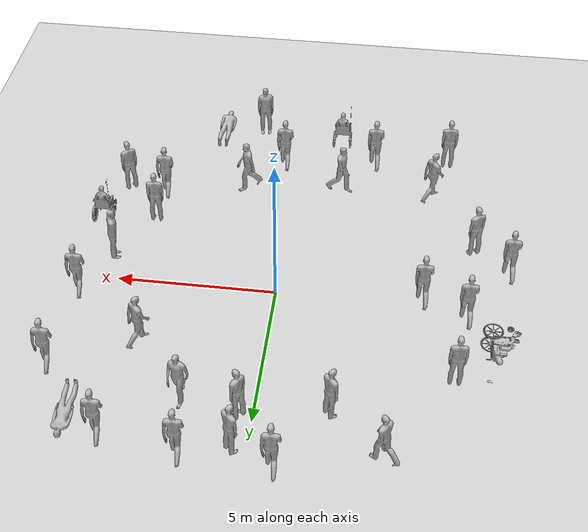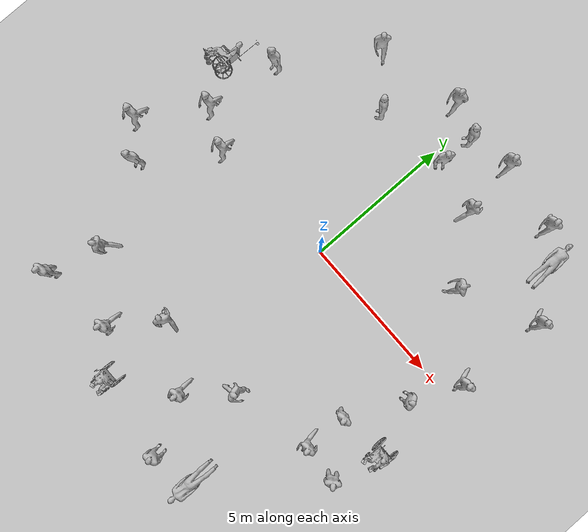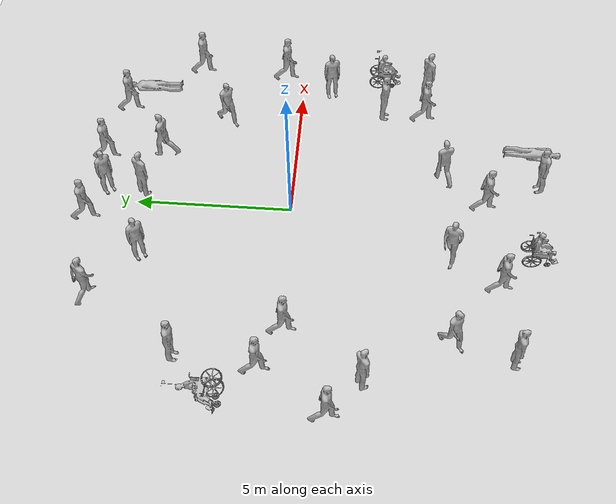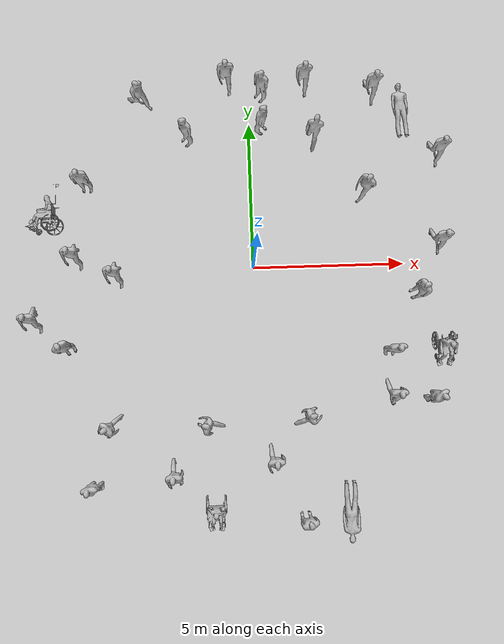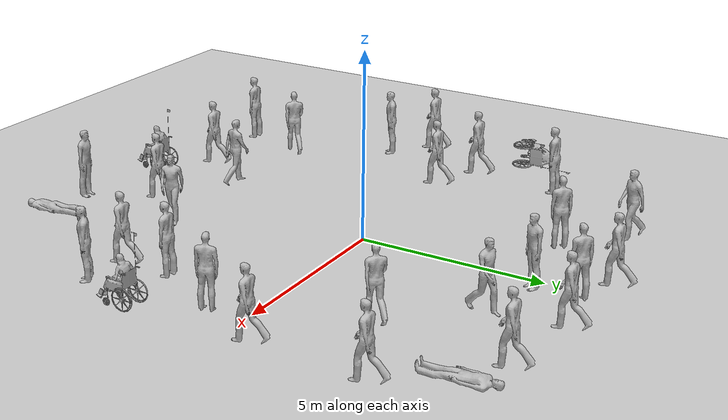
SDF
<sdf version="1.7">
 <world name="default">
  <light name="sun" type="directional">
   <pose>0 0 10 0 -0 0</pose>
   <diffuse>0.8 0.8 0.8 1</diffuse>
   <specular>0.2 0.2 0.2 1</specular>
   <attenuation>
    <range>1000</range>
    <constant>0.9</constant>
    <linear>0.01</linear>
    <quadratic>0.001</quadratic>
   </attenuation>
   <direction>-0.5 0.1 -0.9</direction>
   <spot><inner_angle>0</inner_angle><outer_angle>0</outer_angle><falloff>0</falloff></spot>
  </light>
  <model name="ground_plane">
   <static>1</static>
   <link name="link">
    <collision name="collision">
     <geometry><plane><normal>0 0 1</normal><size>100 100</size></plane></geometry>
     <surface><friction><ode><mu>100</mu><mu2>50</mu2></ode></friction></surface>
    </collision>
    <visual name="visual">
     <cast_shadows>0</cast_shadows>
     <geometry><plane><normal>0 0 1</normal><size>100 100</size></plane></geometry>
     <material>
      <script><uri>file://media/materials/scripts/gazebo.material</uri><name>Gazebo/Grey</name></script>
     </material>
    </visual>
   </link>
  </model>
  <gravity>0 0 -9.8</gravity>
  <magnetic_field>6e-06 2.3e-05 -4.2e-05</magnetic_field>
  <atmosphere type="adiabatic"/>
  <physics type="ode">
   <max_step_size>0.002</max_step_size>
   <real_time_factor>1</real_time_factor>
   <real_time_update_rate>500</real_time_update_rate>
  </physics>
  <scene><ambient>0.4 0.4 0.4 1</ambient><background>0.7 0.7 0.7 1</background><shadows>1</shadows></scene>
  <spherical_coordinates>
   <surface_model>EARTH_WGS84</surface_model>
   <latitude_deg>0</latitude_deg>
   <longitude_deg>0</longitude_deg>
   <elevation>0</elevation>
   <heading_deg>0</heading_deg>
  </spherical_coordinates>
  <model name="walking_person">
   <link name="link">
    <inertial>
     <pose>0 0 0.95 0 -0 0</pose>
     <mass>80</mass>
     <inertia><ixx>27.82</ixx><ixy>0</ixy><ixz>0</ixz><iyy>24.88</iyy><iyz>0</iyz><izz>4.57</izz></inertia>
    </inertial>
    <collision name="bottom">
     <pose>0 0 0.01 0 -0 0</pose>
     <geometry><box><size>0.35 0.75 0.02</size></box></geometry>
    </collision>
    <collision name="person">
     <pose>0 0 -0.02 0 -0 0</pose>
     <geometry><mesh><uri>model://person_walking/meshes/walking.dae</uri></mesh></geometry>
    </collision>
    <visual name="visual">
     <pose>0 0 -0.02 0 -0 0</pose>
     <geometry><mesh><uri>model://person_walking/meshes/walking.dae</uri></mesh></geometry>
    </visual>
   </link>
   <pose>-2.63143 -6.57733 -0 -0 -1e-06 0.000728</pose>
  </model>
  <model name="walking_person_0">
   <link name="link">
    <inertial>
     <pose>0 0 0.95 0 -0 0</pose>
     <mass>80</mass>
     <inertia><ixx>27.82</ixx><ixy>0</ixy><ixz>0</ixz><iyy>24.88</iyy><iyz>0</iyz><izz>4.57</izz></inertia>
    </inertial>
    <collision name="bottom">
     <pose>0 0 0.01 0 -0 0</pose>
     <geometry><box><size>0.35 0.75 0.02</size></box></geometry>
    </collision>
    <collision name="person">
     <pose>0 0 -0.02 0 -0 0</pose>
     <geometry><mesh><uri>model://person_walking/meshes/walking.dae</uri></mesh></geometry>
    </collision>
    <visual name="visual">
     <pose>0 0 -0.02 0 -0 0</pose>
     <geometry><mesh><uri>model://person_walking/meshes/walking.dae</uri></mesh></geometry>
    </visual>
   </link>
   <pose>1.8564 6.36125 1e-06 -1e-06 1e-06 -0.001087</pose>
  </model>
  <model name="person_standing">
   <link name="link">
    <inertial>
     <pose>0 -0.1 0.95 0 -0 0</pose>
     <mass>80</mass>
     <inertia><ixx>24.88</ixx><ixy>0</ixy><ixz>0</ixz><iyy>25.73</iyy><iyz>0</iyz><izz>2.48</izz></inertia>
    </inertial>
    <collision name="bottom">
     <pose>0 -0.1 0.01 0 -0 0</pose>
     <geometry><box><size>0.5 0.35 0.02</size></box></geometry>
    </collision>
    <collision name="person">
     <pose>0 0 0.02 0.04 -0 0</pose>
     <geometry><mesh><uri>model://person_standing/meshes/standing.dae</uri></mesh></geometry>
    </collision>
    <visual name="visual">
     <pose>0 0 0.02 0.04 -0 0</pose>
     <geometry><mesh><uri>model://person_standing/meshes/standing.dae</uri></mesh></geometry>
    </visual>
   </link>
   <pose>2.83579 -6.95923 0.275346 1.59084 -0 -0.001242</pose>
  </model>
  <model name="person_standing_0">
   <link name="link">
    <inertial>
     <pose>0 -0.1 0.95 0 -0 0</pose>
     <mass>80</mass>
     <inertia><ixx>24.88</ixx><ixy>0</ixy><ixz>0</ixz><iyy>25.73</iyy><iyz>0</iyz><izz>2.48</izz></inertia>
    </inertial>
    <collision name="bottom">
     <pose>0 -0.1 0.01 0 -0 0</pose>
     <geometry><box><size>0.5 0.35 0.02</size></box></geometry>
    </collision>
    <collision name="person">
     <pose>0 0 0.02 0.04 -0 0</pose>
     <geometry><mesh><uri>model://person_standing/meshes/standing.dae</uri></mesh></geometry>
    </collision>
    <visual name="visual">
     <pose>0 0 0.02 0.04 -0 0</pose>
     <geometry><mesh><uri>model://person_standing/meshes/standing.dae</uri></mesh></geometry>
    </visual>
   </link>
   <pose>5.39565 -0.982202 1e-06 2e-06 -1e-06 -1.28473</pose>
  </model>
  <model name="PatientWheelChair">
   <static>1</static>
   <link name="body">
    <visual name="visual">
     <geometry><mesh><uri>model://PatientWheelChair/meshes/PatientWheelChair.obj</uri></mesh></geometry>
    </visual>
    <collision name="collision">
     <geometry><mesh><uri>model://PatientWheelChair/meshes/PatientWheelChair_Col.obj</uri></mesh></geometry>
    </collision>
   </link>
   <pose>-6.8506 1.25326 0.569089 -3.14158 -1.56155 1.55368</pose>
  </model>
  <model name="person_standing_1">
   <link name="link">
    <inertial>
     <pose>0 -0.1 0.95 0 -0 0</pose>
     <mass>80</mass>
     <inertia><ixx>24.88</ixx><ixy>0</ixy><ixz>0</ixz><iyy>25.73</iyy><iyz>0</iyz><izz>2.48</izz></inertia>
    </inertial>
    <collision name="bottom">
     <pose>0 -0.1 0.01 0 -0 0</pose>
     <geometry><box><size>0.5 0.35 0.02</size></box></geometry>
    </collision>
    <collision name="person">
     <pose>0 0 0.02 0.04 -0 0</pose>
     <geometry><mesh><uri>model://person_standing/meshes/standing.dae</uri></mesh></geometry>
    </collision>
    <visual name="visual">
     <pose>0 0 0.02 0.04 -0 0</pose>
     <geometry><mesh><uri>model://person_standing/meshes/standing.dae</uri></mesh></geometry>
    </visual>
   </link>
   <pose>-5.55387 2.98569 -1e-06 -1e-06 -1e-06 -0.000504</pose>
  </model>
  <model name="person_standing_2">
   <link name="link">
    <inertial>
     <pose>0 -0.1 0.95 0 -0 0</pose>
     <mass>80</mass>
     <inertia><ixx>24.88</ixx><ixy>0</ixy><ixz>0</ixz><iyy>25.73</iyy><iyz>0</iyz><izz>2.48</izz></inertia>
    </inertial>
    <collision name="bottom">
     <pose>0 -0.1 0.01 0 -0 0</pose>
     <geometry><box><size>0.5 0.35 0.02</size></box></geometry>
    </collision>
    <collision name="person">
     <pose>0 0 0.02 0.04 -0 0</pose>
     <geometry><mesh><uri>model://person_standing/meshes/standing.dae</uri></mesh></geometry>
    </collision>
    <visual name="visual">
     <pose>0 0 0.02 0.04 -0 0</pose>
     <geometry><mesh><uri>model://person_standing/meshes/standing.dae</uri></mesh></geometry>
    </visual>
   </link>
   <pose>-6.1209 -2.47967 0 -1e-06 -1e-06 0.501081</pose>
  </model>
  <model name="walking_person_1">
   <link name="link">
    <inertial>
     <pose>0 0 0.95 0 -0 0</pose>
     <mass>80</mass>
     <inertia><ixx>27.82</ixx><ixy>0</ixy><ixz>0</ixz><iyy>24.88</iyy><iyz>0</iyz><izz>4.57</izz></inertia>
    </inertial>
    <collision name="bottom">
     <pose>0 0 0.01 0 -0 0</pose>
     <geometry><box><size>0.35 0.75 0.02</size></box></geometry>
    </collision>
    <collision name="person">
     <pose>0 0 -0.02 0 -0 0</pose>
     <geometry><mesh><uri>model://person_walking/meshes/walking.dae</uri></mesh></geometry>
    </collision>
    <visual name="visual">
     <pose>0 0 -0.02 0 -0 0</pose>
     <geometry><mesh><uri>model://person_walking/meshes/walking.dae</uri></mesh></geometry>
    </visual>
   </link>
   <pose>-4.62836 -5.08628 -1e-06 -2e-06 -2e-06 -0.856214</pose>
  </model>
  <model name="person_standing_3">
   <link name="link">
    <inertial>
     <pose>0 -0.1 0.95 0 -0 0</pose>
     <mass>80</mass>
     <inertia><ixx>24.88</ixx><ixy>0</ixy><ixz>0</ixz><iyy>25.73</iyy><iyz>0</iyz><izz>2.48</izz></inertia>
    </inertial>
    <collision name="bottom">
     <pose>0 -0.1 0.01 0 -0 0</pose>
     <geometry><box><size>0.5 0.35 0.02</size></box></geometry>
    </collision>
    <collision name="person">
     <pose>0 0 0.02 0.04 -0 0</pose>
     <geometry><mesh><uri>model://person_standing/meshes/standing.dae</uri></mesh></geometry>
    </collision>
    <visual name="visual">
     <pose>0 0 0.02 0.04 -0 0</pose>
     <geometry><mesh><uri>model://person_standing/meshes/standing.dae</uri></mesh></geometry>
    </visual>
   </link>
   <pose>-5.16159 -6.8037 -0 1e-06 1e-06 0.003403</pose>
  </model>
  <model name="walking_person_2">
   <link name="link">
    <inertial>
     <pose>0 0 0.95 0 -0 0</pose>
     <mass>80</mass>
     <inertia><ixx>27.82</ixx><ixy>0</ixy><ixz>0</ixz><iyy>24.88</iyy><iyz>0</iyz><izz>4.57</izz></inertia>
    </inertial>
    <collision name="bottom">
     <pose>0 0 0.01 0 -0 0</pose>
     <geometry><box><size>0.35 0.75 0.02</size></box></geometry>
    </collision>
    <collision name="person">
     <pose>0 0 -0.02 0 -0 0</pose>
     <geometry><mesh><uri>model://person_walking/meshes/walking.dae</uri></mesh></geometry>
    </collision>
    <visual name="visual">
     <pose>0 0 -0.02 0 -0 0</pose>
     <geometry><mesh><uri>model://person_walking/meshes/walking.dae</uri></mesh></geometry>
    </visual>
   </link>
   <pose>0.481215 -6.21189 -1e-06 -2e-06 1e-06 -0.000213</pose>
  </model>
  <model name="person_standing_4">
   <link name="link">
    <inertial>
     <pose>0 -0.1 0.95 0 -0 0</pose>
     <mass>80</mass>
     <inertia><ixx>24.88</ixx><ixy>0</ixy><ixz>0</ixz><iyy>25.73</iyy><iyz>0</iyz><izz>2.48</izz></inertia>
    </inertial>
    <collision name="bottom">
     <pose>0 -0.1 0.01 0 -0 0</pose>
     <geometry><box><size>0.5 0.35 0.02</size></box></geometry>
    </collision>
    <collision name="person">
     <pose>0 0 0.02 0.04 -0 0</pose>
     <geometry><mesh><uri>model://person_standing/meshes/standing.dae</uri></mesh></geometry>
    </collision>
    <visual name="visual">
     <pose>0 0 0.02 0.04 -0 0</pose>
     <geometry><mesh><uri>model://person_standing/meshes/standing.dae</uri></mesh></geometry>
    </visual>
   </link>
   <pose>4.35104 -2.80047 -0 1e-06 -1e-06 -0.000889</pose>
  </model>
  <model name="PatientWheelChair_0">
   <static>1</static>
   <link name="body">
    <visual name="visual">
     <geometry><mesh><uri>model://PatientWheelChair/meshes/PatientWheelChair.obj</uri></mesh></geometry>
    </visual>
    <collision name="collision">
     <geometry><mesh><uri>model://PatientWheelChair/meshes/PatientWheelChair_Col.obj</uri></mesh></geometry>
    </collision>
   </link>
   <pose>-1.41044 -7.83016 0 0 -0 0</pose>
  </model>
  <model name="walking_person_3">
   <link name="link">
    <inertial>
     <pose>0 0 0.95 0 -0 0</pose>
     <mass>80</mass>
     <inertia><ixx>27.82</ixx><ixy>0</ixy><ixz>0</ixz><iyy>24.88</iyy><iyz>0</iyz><izz>4.57</izz></inertia>
    </inertial>
    <collision name="bottom">
     <pose>0 0 0.01 0 -0 0</pose>
     <geometry><box><size>0.35 0.75 0.02</size></box></geometry>
    </collision>
    <collision name="person">
     <pose>0 0 -0.02 0 -0 0</pose>
     <geometry><mesh><uri>model://person_walking/meshes/walking.dae</uri></mesh></geometry>
    </collision>
    <visual name="visual">
     <pose>0 0 -0.02 0 -0 0</pose>
     <geometry><mesh><uri>model://person_walking/meshes/walking.dae</uri></mesh></geometry>
    </visual>
   </link>
   <pose>-1.55456 -5.10593 -0 0 -1e-06 -1.91474</pose>
  </model>
  <model name="person_standing_5">
   <link name="link">
    <inertial>
     <pose>0 -0.1 0.95 0 -0 0</pose>
     <mass>80</mass>
     <inertia><ixx>24.88</ixx><ixy>0</ixy><ixz>0</ixz><iyy>25.73</iyy><iyz>0</iyz><izz>2.48</izz></inertia>
    </inertial>
    <collision name="bottom">
     <pose>0 -0.1 0.01 0 -0 0</pose>
     <geometry><box><size>0.5 0.35 0.02</size></box></geometry>
    </collision>
    <collision name="person">
     <pose>0 0 0.02 0.04 -0 0</pose>
     <geometry><mesh><uri>model://person_standing/meshes/standing.dae</uri></mesh></geometry>
    </collision>
    <visual name="visual">
     <pose>0 0 0.02 0.04 -0 0</pose>
     <geometry><mesh><uri>model://person_standing/meshes/standing.dae</uri></mesh></geometry>
    </visual>
   </link>
   <pose>5.52471 -4.32122 -1e-06 -1e-06 -1e-06 0.593616</pose>
  </model>
  <model name="walking_person_4">
   <link name="link">
    <inertial>
     <pose>0 0 0.95 0 -0 0</pose>
     <mass>80</mass>
     <inertia><ixx>27.82</ixx><ixy>0</ixy><ixz>0</ixz><iyy>24.88</iyy><iyz>0</iyz><izz>4.57</izz></inertia>
    </inertial>
    <collision name="bottom">
     <pose>0 0 0.01 0 -0 0</pose>
     <geometry><box><size>0.35 0.75 0.02</size></box></geometry>
    </collision>
    <collision name="person">
     <pose>0 0 -0.02 0 -0 0</pose>
     <geometry><mesh><uri>model://person_walking/meshes/walking.dae</uri></mesh></geometry>
    </collision>
    <visual name="visual">
     <pose>0 0 -0.02 0 -0 0</pose>
     <geometry><mesh><uri>model://person_walking/meshes/walking.dae</uri></mesh></geometry>
    </visual>
   </link>
   <pose>6.2139 3.71194 -0 0 -1e-06 0.002845</pose>
  </model>
  <model name="walking_person_5">
   <link name="link">
    <inertial>
     <pose>0 0 0.95 0 -0 0</pose>
     <mass>80</mass>
     <inertia><ixx>27.82</ixx><ixy>0</ixy><ixz>0</ixz><iyy>24.88</iyy><iyz>0</iyz><izz>4.57</izz></inertia>
    </inertial>
    <collision name="bottom">
     <pose>0 0 0.01 0 -0 0</pose>
     <geometry><box><size>0.35 0.75 0.02</size></box></geometry>
    </collision>
    <collision name="person">
     <pose>0 0 -0.02 0 -0 0</pose>
     <geometry><mesh><uri>model://person_walking/meshes/walking.dae</uri></mesh></geometry>
    </collision>
    <visual name="visual">
     <pose>0 0 -0.02 0 -0 0</pose>
     <geometry><mesh><uri>model://person_walking/meshes/walking.dae</uri></mesh></geometry>
    </visual>
   </link>
   <pose>3.76122 2.50468 -1e-06 2e-06 -0 -0.789032</pose>
  </model>
  <model name="walking_person_6">
   <link name="link">
    <inertial>
     <pose>0 0 0.95 0 -0 0</pose>
     <mass>80</mass>
     <inertia><ixx>27.82</ixx><ixy>0</ixy><ixz>0</ixz><iyy>24.88</iyy><iyz>0</iyz><izz>4.57</izz></inertia>
    </inertial>
    <collision name="bottom">
     <pose>0 0 0.01 0 -0 0</pose>
     <geometry><box><size>0.35 0.75 0.02</size></box></geometry>
    </collision>
    <collision name="person">
     <pose>0 0 -0.02 0 -0 0</pose>
     <geometry><mesh><uri>model://person_walking/meshes/walking.dae</uri></mesh></geometry>
    </collision>
    <visual name="visual">
     <pose>0 0 -0.02 0 -0 0</pose>
     <geometry><mesh><uri>model://person_walking/meshes/walking.dae</uri></mesh></geometry>
    </visual>
   </link>
   <pose>4.15243 5.99033 -0 0 -1e-06 -0.000613</pose>
  </model>
  <model name="walking_person_7">
   <link name="link">
    <inertial>
     <pose>0 0 0.95 0 -0 0</pose>
     <mass>80</mass>
     <inertia><ixx>27.82</ixx><ixy>0</ixy><ixz>0</ixz><iyy>24.88</iyy><iyz>0</iyz><izz>4.57</izz></inertia>
    </inertial>
    <collision name="bottom">
     <pose>0 0 0.01 0 -0 0</pose>
     <geometry><box><size>0.35 0.75 0.02</size></box></geometry>
    </collision>
    <collision name="person">
     <pose>0 0 -0.02 0 -0 0</pose>
     <geometry><mesh><uri>model://person_walking/meshes/walking.dae</uri></mesh></geometry>
    </collision>
    <visual name="visual">
     <pose>0 0 -0.02 0 -0 0</pose>
     <geometry><mesh><uri>model://person_walking/meshes/walking.dae</uri></mesh></geometry>
    </visual>
   </link>
   <pose>2.12499 4.40754 1e-06 0 4e-06 2.86323</pose>
  </model>
  <model name="walking_person_8">
   <link name="link">
    <inertial>
     <pose>0 0 0.95 0 -0 0</pose>
     <mass>80</mass>
     <inertia><ixx>27.82</ixx><ixy>0</ixy><ixz>0</ixz><iyy>24.88</iyy><iyz>0</iyz><izz>4.57</izz></inertia>
    </inertial>
    <collision name="bottom">
     <pose>0 0 0.01 0 -0 0</pose>
     <geometry><box><size>0.35 0.75 0.02</size></box></geometry>
    </collision>
    <collision name="person">
     <pose>0 0 -0.02 0 -0 0</pose>
     <geometry><mesh><uri>model://person_walking/meshes/walking.dae</uri></mesh></geometry>
    </collision>
    <visual name="visual">
     <pose>0 0 -0.02 0 -0 0</pose>
     <geometry><mesh><uri>model://person_walking/meshes/walking.dae</uri></mesh></geometry>
    </visual>
   </link>
   <pose>1.55994 -4.89837 0 -1e-06 1e-06 1.91119</pose>
  </model>
  <model name="walking_person_9">
   <link name="link">
    <inertial>
     <pose>0 0 0.95 0 -0 0</pose>
     <mass>80</mass>
     <inertia><ixx>27.82</ixx><ixy>0</ixy><ixz>0</ixz><iyy>24.88</iyy><iyz>0</iyz><izz>4.57</izz></inertia>
    </inertial>
    <collision name="bottom">
     <pose>0 0 0.01 0 -0 0</pose>
     <geometry><box><size>0.35 0.75 0.02</size></box></geometry>
    </collision>
    <collision name="person">
     <pose>0 0 -0.02 0 -0 0</pose>
     <geometry><mesh><uri>model://person_walking/meshes/walking.dae</uri></mesh></geometry>
    </collision>
    <visual name="visual">
     <pose>0 0 -0.02 0 -0 0</pose>
     <geometry><mesh><uri>model://person_walking/meshes/walking.dae</uri></mesh></geometry>
    </visual>
   </link>
   <pose>-3.69491 5.8265 -1e-06 -2e-06 1e-06 0.889623</pose>
  </model>
  <model name="walking_person_10">
   <link name="link">
    <inertial>
     <pose>0 0 0.95 0 -0 0</pose>
     <mass>80</mass>
     <inertia><ixx>27.82</ixx><ixy>0</ixy><ixz>0</ixz><iyy>24.88</iyy><iyz>0</iyz><izz>4.57</izz></inertia>
    </inertial>
    <collision name="bottom">
     <pose>0 0 0.01 0 -0 0</pose>
     <geometry><box><size>0.35 0.75 0.02</size></box></geometry>
    </collision>
    <collision name="person">
     <pose>0 0 -0.02 0 -0 0</pose>
     <geometry><mesh><uri>model://person_walking/meshes/walking.dae</uri></mesh></geometry>
    </collision>
    <visual name="visual">
     <pose>0 0 -0.02 0 -0 0</pose>
     <geometry><mesh><uri>model://person_walking/meshes/walking.dae</uri></mesh></geometry>
    </visual>
   </link>
   <pose>-0.750672 6.49051 0 1e-06 -0 0.000757</pose>
  </model>
  <model name="person_standing_6">
   <link name="link">
    <inertial>
     <pose>0 -0.1 0.95 0 -0 0</pose>
     <mass>80</mass>
     <inertia><ixx>24.88</ixx><ixy>0</ixy><ixz>0</ixz><iyy>25.73</iyy><iyz>0</iyz><izz>2.48</izz></inertia>
    </inertial>
    <collision name="bottom">
     <pose>0 -0.1 0.01 0 -0 0</pose>
     <geometry><box><size>0.5 0.35 0.02</size></box></geometry>
    </collision>
    <collision name="person">
     <pose>0 0 0.02 0.04 -0 0</pose>
     <geometry><mesh><uri>model://person_standing/meshes/standing.dae</uri></mesh></geometry>
    </collision>
    <visual name="visual">
     <pose>0 0 0.02 0.04 -0 0</pose>
     <geometry><mesh><uri>model://person_standing/meshes/standing.dae</uri></mesh></geometry>
    </visual>
   </link>
   <pose>0.333717 4.87692 -1e-06 -1e-06 1e-06 0.883765</pose>
  </model>
  <model name="person_standing_7">
   <link name="link">
    <inertial>
     <pose>0 -0.1 0.95 0 -0 0</pose>
     <mass>80</mass>
     <inertia><ixx>24.88</ixx><ixy>0</ixy><ixz>0</ixz><iyy>25.73</iyy><iyz>0</iyz><izz>2.48</izz></inertia>
    </inertial>
    <collision name="bottom">
     <pose>0 -0.1 0.01 0 -0 0</pose>
     <geometry><box><size>0.5 0.35 0.02</size></box></geometry>
    </collision>
    <collision name="person">
     <pose>0 0 0.02 0.04 -0 0</pose>
     <geometry><mesh><uri>model://person_standing/meshes/standing.dae</uri></mesh></geometry>
    </collision>
    <visual name="visual">
     <pose>0 0 0.02 0.04 -0 0</pose>
     <geometry><mesh><uri>model://person_standing/meshes/standing.dae</uri></mesh></geometry>
    </visual>
   </link>
   <pose>-2.06482 4.53692 -1e-06 -1e-06 -1e-06 -0.896691</pose>
  </model>
  <model name="walking_person_11">
   <link name="link">
    <inertial>
     <pose>0 0 0.95 0 -0 0</pose>
     <mass>80</mass>
     <inertia><ixx>27.82</ixx><ixy>0</ixy><ixz>0</ixz><iyy>24.88</iyy><iyz>0</iyz><izz>4.57</izz></inertia>
    </inertial>
    <collision name="bottom">
     <pose>0 0 0.01 0 -0 0</pose>
     <geometry><box><size>0.35 0.75 0.02</size></box></geometry>
    </collision>
    <collision name="person">
     <pose>0 0 -0.02 0 -0 0</pose>
     <geometry><mesh><uri>model://person_walking/meshes/walking.dae</uri></mesh></geometry>
    </collision>
    <visual name="visual">
     <pose>0 0 -0.02 0 -0 0</pose>
     <geometry><mesh><uri>model://person_walking/meshes/walking.dae</uri></mesh></geometry>
    </visual>
   </link>
   <pose>-7.16815 -1.59209 -0 0 -1e-06 -0.000172</pose>
  </model>
  <model name="walking_person_12">
   <link name="link">
    <inertial>
     <pose>0 0 0.95 0 -0 0</pose>
     <mass>80</mass>
     <inertia><ixx>27.82</ixx><ixy>0</ixy><ixz>0</ixz><iyy>24.88</iyy><iyz>0</iyz><izz>4.57</izz></inertia>
    </inertial>
    <collision name="bottom">
     <pose>0 0 0.01 0 -0 0</pose>
     <geometry><box><size>0.35 0.75 0.02</size></box></geometry>
    </collision>
    <collision name="person">
     <pose>0 0 -0.02 0 -0 0</pose>
     <geometry><mesh><uri>model://person_walking/meshes/walking.dae</uri></mesh></geometry>
    </collision>
    <visual name="visual">
     <pose>0 0 -0.02 0 -0 0</pose>
     <geometry><mesh><uri>model://person_walking/meshes/walking.dae</uri></mesh></geometry>
    </visual>
   </link>
   <pose>-5.85508 0.471774 -1e-06 -2e-06 -0 -0.001485</pose>
  </model>
  <model name="walking_person_13">
   <link name="link">
    <inertial>
     <pose>0 0 0.95 0 -0 0</pose>
     <mass>80</mass>
     <inertia><ixx>27.82</ixx><ixy>0</ixy><ixz>0</ixz><iyy>24.88</iyy><iyz>0</iyz><izz>4.57</izz></inertia>
    </inertial>
    <collision name="bottom">
     <pose>0 0 0.01 0 -0 0</pose>
     <geometry><box><size>0.35 0.75 0.02</size></box></geometry>
    </collision>
    <collision name="person">
     <pose>0 0 -0.02 0 -0 0</pose>
     <geometry><mesh><uri>model://person_walking/meshes/walking.dae</uri></mesh></geometry>
    </collision>
    <visual name="visual">
     <pose>0 0 -0.02 0 -0 0</pose>
     <geometry><mesh><uri>model://person_walking/meshes/walking.dae</uri></mesh></geometry>
    </visual>
   </link>
   <pose>-4.51206 -0.164724 -0 0 1e-06 0.00011</pose>
  </model>
  <model name="PatientWheelChair_1">
   <static>1</static>
   <link name="body">
    <visual name="visual">
     <geometry><mesh><uri>model://PatientWheelChair/meshes/PatientWheelChair.obj</uri></mesh></geometry>
    </visual>
    <collision name="collision">
     <geometry><mesh><uri>model://PatientWheelChair/meshes/PatientWheelChair_Col.obj</uri></mesh></geometry>
    </collision>
   </link>
   <pose>6.1023 -2.88705 0 0 -0 0</pose>
  </model>
  <model name="walking_person_14">
   <link name="link">
    <inertial>
     <pose>0 0 0.95 0 -0 0</pose>
     <mass>80</mass>
     <inertia><ixx>27.82</ixx><ixy>0</ixy><ixz>0</ixz><iyy>24.88</iyy><iyz>0</iyz><izz>4.57</izz></inertia>
    </inertial>
    <collision name="bottom">
     <pose>0 0 0.01 0 -0 0</pose>
     <geometry><box><size>0.35 0.75 0.02</size></box></geometry>
    </collision>
    <collision name="person">
     <pose>0 0 -0.02 0 -0 0</pose>
     <geometry><mesh><uri>model://person_walking/meshes/walking.dae</uri></mesh></geometry>
    </collision>
    <visual name="visual">
     <pose>0 0 -0.02 0 -0 0</pose>
     <geometry><mesh><uri>model://person_walking/meshes/walking.dae</uri></mesh></geometry>
    </visual>
   </link>
   <pose>6.0736 0.671508 -1e-06 -2e-06 -1e-06 -0.001117</pose>
  </model>
  <model name="walking_person_15">
   <link name="link">
    <inertial>
     <pose>0 0 0.95 0 -0 0</pose>
     <mass>80</mass>
     <inertia><ixx>27.82</ixx><ixy>0</ixy><ixz>0</ixz><iyy>24.88</iyy><iyz>0</iyz><izz>4.57</izz></inertia>
    </inertial>
    <collision name="bottom">
     <pose>0 0 0.01 0 -0 0</pose>
     <geometry><box><size>0.35 0.75 0.02</size></box></geometry>
    </collision>
    <collision name="person">
     <pose>0 0 -0.02 0 -0 0</pose>
     <geometry><mesh><uri>model://person_walking/meshes/walking.dae</uri></mesh></geometry>
    </collision>
    <visual name="visual">
     <pose>0 0 -0.02 0 -0 0</pose>
     <geometry><mesh><uri>model://person_walking/meshes/walking.dae</uri></mesh></geometry>
    </visual>
   </link>
   <pose>4.3121 -4.25465 -1e-06 -2e-06 1e-06 0.001283</pose>
  </model>
  <model name="person_standing_8">
   <link name="link">
    <inertial>
     <pose>0 -0.1 0.95 0 -0 0</pose>
     <mass>80</mass>
     <inertia><ixx>24.88</ixx><ixy>0</ixy><ixz>0</ixz><iyy>25.73</iyy><iyz>0</iyz><izz>2.48</izz></inertia>
    </inertial>
    <collision name="bottom">
     <pose>0 -0.1 0.01 0 -0 0</pose>
     <geometry><box><size>0.5 0.35 0.02</size></box></geometry>
    </collision>
    <collision name="person">
     <pose>0 0 0.02 0.04 -0 0</pose>
     <geometry><mesh><uri>model://person_standing/meshes/standing.dae</uri></mesh></geometry>
    </collision>
    <visual name="visual">
     <pose>0 0 0.02 0.04 -0 0</pose>
     <geometry><mesh><uri>model://person_standing/meshes/standing.dae</uri></mesh></geometry>
    </visual>
   </link>
   <pose>5.26214 4.3604 0.079294 -1.57967 0.016518 0.040623</pose>
  </model>
  <model name="person_standing_9">
   <link name="link">
    <inertial>
     <pose>0 -0.1 0.95 0 -0 0</pose>
     <mass>80</mass>
     <inertia><ixx>24.88</ixx><ixy>0</ixy><ixz>0</ixz><iyy>25.73</iyy><iyz>0</iyz><izz>2.48</izz></inertia>
    </inertial>
    <collision name="bottom">
     <pose>0 -0.1 0.01 0 -0 0</pose>
     <geometry><box><size>0.5 0.35 0.02</size></box></geometry>
    </collision>
    <collision name="person">
     <pose>0 0 0.02 0.04 -0 0</pose>
     <geometry><mesh><uri>model://person_standing/meshes/standing.dae</uri></mesh></geometry>
    </collision>
    <visual name="visual">
     <pose>0 0 0.02 0.04 -0 0</pose>
     <geometry><mesh><uri>model://person_standing/meshes/standing.dae</uri></mesh></geometry>
    </visual>
   </link>
   <pose>1.42977 -8.12212 -0 -1e-06 -1e-06 -2.99708</pose>
  </model>
  <model name="person_standing_10">
   <link name="link">
    <inertial>
     <pose>0 -0.1 0.95 0 -0 0</pose>
     <mass>80</mass>
     <inertia><ixx>24.88</ixx><ixy>0</ixy><ixz>0</ixz><iyy>25.73</iyy><iyz>0</iyz><izz>2.48</izz></inertia>
    </inertial>
    <collision name="bottom">
     <pose>0 -0.1 0.01 0 -0 0</pose>
     <geometry><box><size>0.5 0.35 0.02</size></box></geometry>
    </collision>
    <collision name="person">
     <pose>0 0 0.02 0.04 -0 0</pose>
     <geometry><mesh><uri>model://person_standing/meshes/standing.dae</uri></mesh></geometry>
    </collision>
    <visual name="visual">
     <pose>0 0 0.02 0.04 -0 0</pose>
     <geometry><mesh><uri>model://person_standing/meshes/standing.dae</uri></mesh></geometry>
    </visual>
   </link>
   <pose>0.477196 6.06863 -0 1e-06 1e-06 -0.809574</pose>
  </model>
 </world>
</sdf>
